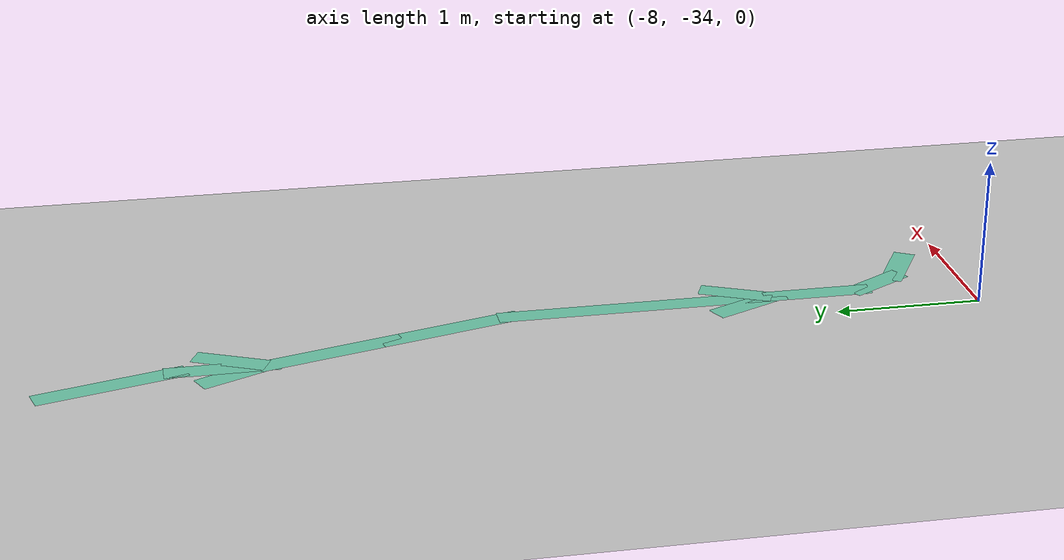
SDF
<sdf version="1.6">
 <world name="world">
  <model name="ground_plane">
   <static>1</static>
   <link name="link">
    <collision name="collision">
     <geometry><plane><normal>0 0 1</normal><size>100 100</size></plane></geometry>
     <surface><friction><ode><mu>100</mu><mu2>50</mu2></ode></friction></surface>
    </collision>
    <visual name="visual">
     <cast_shadows>0</cast_shadows>
     <geometry><plane><normal>0 0 1</normal><size>100 100</size></plane></geometry>
     <material>
      <script><uri>file://media/materials/scripts/gazebo.material</uri><name>Gazebo/Grey</name></script>
     </material>
    </visual>
   </link>
   <pose>0 0 -0.1 0 -0 0</pose>
  </model>
  <model name="path_hospital">
   <link name="Wall_33">
    <pose>-5.74819 -6.16107 0 0 -0 2.61799</pose>
    <visual name="Wall_33_Visual">
     <geometry><box><size>0.5 0.15 0</size></box></geometry>
     <material>
      <script><uri>file://media/materials/scripts/gazebo.material</uri><name>Gazebo/Grey</name></script>
      <ambient>0.435294 0.796078 0.67451 1</ambient>
      <shader type="pixel"/>
     </material>
     <meta><layer>0</layer></meta>
    </visual>
    <collision name="Wall_33_Collision">
     <geometry><box><size>0.5 0.15 0</size></box></geometry>
     <surface>
      <friction>
       <ode><mu>1</mu><mu2>1</mu2><fdir1>0 0 0</fdir1><slip1>0</slip1><slip2>0</slip2></ode>
       <torsional>
        <coefficient>1</coefficient>
        <patch_radius>0</patch_radius>
        <surface_radius>0</surface_radius>
        <use_patch_radius>1</use_patch_radius>
        <ode><slip>0</slip></ode>
       </torsional>
      </friction>
      <bounce><restitution_coefficient>0</restitution_coefficient><threshold>1e+06</threshold></bounce>
      <contact>
       <collide_without_contact>0</collide_without_contact>
       <collide_without_contact_bitmask>1</collide_without_contact_bitmask>
       <collide_bitmask>1</collide_bitmask>
       <ode>
        <soft_cfm>0</soft_cfm>
        <soft_erp>0.2</soft_erp>
        <kp>1e+13</kp>
        <kd>1</kd>
        <max_vel>0.01</max_vel>
        <min_depth>0</min_depth>
       </ode>
       <bullet>
        <split_impulse>1</split_impulse>
        <split_impulse_penetration_threshold>-0.01</split_impulse_penetration_threshold>
        <soft_cfm>0</soft_cfm>
        <soft_erp>0.2</soft_erp>
        <kp>1e+13</kp>
        <kd>1</kd>
       </bullet>
      </contact>
     </surface>
    </collision>
   </link>
   <link name="Wall_34">
    <pose>-5.98725 -5.92201 0 0 -0 2.0944</pose>
    <visual name="Wall_34_Visual">
     <geometry><box><size>0.5 0.15 0</size></box></geometry>
     <material>
      <script><uri>file://media/materials/scripts/gazebo.material</uri><name>Gazebo/Grey</name></script>
      <ambient>0.435294 0.796078 0.67451 1</ambient>
      <shader type="pixel"/>
     </material>
     <meta><layer>0</layer></meta>
    </visual>
    <collision name="Wall_34_Collision">
     <geometry><box><size>0.5 0.15 0</size></box></geometry>
     <surface>
      <friction>
       <ode><mu>1</mu><mu2>1</mu2><fdir1>0 0 0</fdir1><slip1>0</slip1><slip2>0</slip2></ode>
       <torsional>
        <coefficient>1</coefficient>
        <patch_radius>0</patch_radius>
        <surface_radius>0</surface_radius>
        <use_patch_radius>1</use_patch_radius>
        <ode><slip>0</slip></ode>
       </torsional>
      </friction>
      <bounce><restitution_coefficient>0</restitution_coefficient><threshold>1e+06</threshold></bounce>
      <contact>
       <collide_without_contact>0</collide_without_contact>
       <collide_without_contact_bitmask>1</collide_without_contact_bitmask>
       <collide_bitmask>1</collide_bitmask>
       <ode>
        <soft_cfm>0</soft_cfm>
        <soft_erp>0.2</soft_erp>
        <kp>1e+13</kp>
        <kd>1</kd>
        <max_vel>0.01</max_vel>
        <min_depth>0</min_depth>
       </ode>
       <bullet>
        <split_impulse>1</split_impulse>
        <split_impulse_penetration_threshold>-0.01</split_impulse_penetration_threshold>
        <soft_cfm>0</soft_cfm>
        <soft_erp>0.2</soft_erp>
        <kp>1e+13</kp>
        <kd>1</kd>
       </bullet>
      </contact>
     </surface>
    </collision>
   </link>
   <link name="Wall_35">
    <pose>-6.07475 -5.47046 0 0 -0 1.5708</pose>
    <visual name="Wall_35_Visual">
     <geometry><box><size>0.75 0.15 0</size></box></geometry>
     <material>
      <script><uri>file://media/materials/scripts/gazebo.material</uri><name>Gazebo/Grey</name></script>
      <ambient>0.435294 0.796078 0.67451 1</ambient>
      <shader type="pixel"/>
     </material>
     <meta><layer>0</layer></meta>
    </visual>
    <collision name="Wall_35_Collision">
     <geometry><box><size>0.75 0.15 0</size></box></geometry>
     <surface>
      <friction>
       <ode><mu>1</mu><mu2>1</mu2><fdir1>0 0 0</fdir1><slip1>0</slip1><slip2>0</slip2></ode>
       <torsional>
        <coefficient>1</coefficient>
        <patch_radius>0</patch_radius>
        <surface_radius>0</surface_radius>
        <use_patch_radius>1</use_patch_radius>
        <ode><slip>0</slip></ode>
       </torsional>
      </friction>
      <bounce><restitution_coefficient>0</restitution_coefficient><threshold>1e+06</threshold></bounce>
      <contact>
       <collide_without_contact>0</collide_without_contact>
       <collide_without_contact_bitmask>1</collide_without_contact_bitmask>
       <collide_bitmask>1</collide_bitmask>
       <ode>
        <soft_cfm>0</soft_cfm>
        <soft_erp>0.2</soft_erp>
        <kp>1e+13</kp>
        <kd>1</kd>
        <max_vel>0.01</max_vel>
        <min_depth>0</min_depth>
       </ode>
       <bullet>
        <split_impulse>1</split_impulse>
        <split_impulse_penetration_threshold>-0.01</split_impulse_penetration_threshold>
        <soft_cfm>0</soft_cfm>
        <soft_erp>0.2</soft_erp>
        <kp>1e+13</kp>
        <kd>1</kd>
       </bullet>
      </contact>
     </surface>
    </collision>
   </link>
   <link name="Wall_36">
    <pose>-6.07475 -4.24546 0 0 -0 1.5708</pose>
    <visual name="Wall_36_Visual">
     <geometry><box><size>2 0.15 0</size></box></geometry>
     <material>
      <script><uri>file://media/materials/scripts/gazebo.material</uri><name>Gazebo/Grey</name></script>
      <ambient>0.435294 0.796078 0.67451 1</ambient>
      <shader type="pixel"/>
     </material>
     <meta><layer>0</layer></meta>
    </visual>
    <collision name="Wall_36_Collision">
     <geometry><box><size>2 0.15 0</size></box></geometry>
     <surface>
      <friction>
       <ode><mu>1</mu><mu2>1</mu2><fdir1>0 0 0</fdir1><slip1>0</slip1><slip2>0</slip2></ode>
       <torsional>
        <coefficient>1</coefficient>
        <patch_radius>0</patch_radius>
        <surface_radius>0</surface_radius>
        <use_patch_radius>1</use_patch_radius>
        <ode><slip>0</slip></ode>
       </torsional>
      </friction>
      <bounce><restitution_coefficient>0</restitution_coefficient><threshold>1e+06</threshold></bounce>
      <contact>
       <collide_without_contact>0</collide_without_contact>
       <collide_without_contact_bitmask>1</collide_without_contact_bitmask>
       <collide_bitmask>1</collide_bitmask>
       <ode>
        <soft_cfm>0</soft_cfm>
        <soft_erp>0.2</soft_erp>
        <kp>1e+13</kp>
        <kd>1</kd>
        <max_vel>0.01</max_vel>
        <min_depth>0</min_depth>
       </ode>
       <bullet>
        <split_impulse>1</split_impulse>
        <split_impulse_penetration_threshold>-0.01</split_impulse_penetration_threshold>
        <soft_cfm>0</soft_cfm>
        <soft_erp>0.2</soft_erp>
        <kp>1e+13</kp>
        <kd>1</kd>
       </bullet>
      </contact>
     </surface>
    </collision>
   </link>
   <link name="Wall_37">
    <pose>-6.18475 -2.90994 0 0 -0 1.8326</pose>
    <visual name="Wall_37_Visual">
     <geometry><box><size>1 0.15 0</size></box></geometry>
     <material>
      <script><uri>file://media/materials/scripts/gazebo.material</uri><name>Gazebo/Grey</name></script>
      <ambient>0.435294 0.796078 0.67451 1</ambient>
      <shader type="pixel"/>
     </material>
     <meta><layer>0</layer></meta>
    </visual>
    <collision name="Wall_37_Collision">
     <geometry><box><size>1 0.15 0</size></box></geometry>
     <surface>
      <friction>
       <ode><mu>1</mu><mu2>1</mu2><fdir1>0 0 0</fdir1><slip1>0</slip1><slip2>0</slip2></ode>
       <torsional>
        <coefficient>1</coefficient>
        <patch_radius>0</patch_radius>
        <surface_radius>0</surface_radius>
        <use_patch_radius>1</use_patch_radius>
        <ode><slip>0</slip></ode>
       </torsional>
      </friction>
      <bounce><restitution_coefficient>0</restitution_coefficient><threshold>1e+06</threshold></bounce>
      <contact>
       <collide_without_contact>0</collide_without_contact>
       <collide_without_contact_bitmask>1</collide_without_contact_bitmask>
       <collide_bitmask>1</collide_bitmask>
       <ode>
        <soft_cfm>0</soft_cfm>
        <soft_erp>0.2</soft_erp>
        <kp>1e+13</kp>
        <kd>1</kd>
        <max_vel>0.01</max_vel>
        <min_depth>0</min_depth>
       </ode>
       <bullet>
        <split_impulse>1</split_impulse>
        <split_impulse_penetration_threshold>-0.01</split_impulse_penetration_threshold>
        <soft_cfm>0</soft_cfm>
        <soft_erp>0.2</soft_erp>
        <kp>1e+13</kp>
        <kd>1</kd>
       </bullet>
      </contact>
     </surface>
    </collision>
   </link>
   <link name="Wall_38">
    <pose>-6.40474 -2.08891 0 0 -0 1.8326</pose>
    <visual name="Wall_38_Visual">
     <geometry><box><size>1 0.15 0</size></box></geometry>
     <material>
      <script><uri>file://media/materials/scripts/gazebo.material</uri><name>Gazebo/Grey</name></script>
      <ambient>0.435294 0.796078 0.67451 1</ambient>
      <shader type="pixel"/>
     </material>
     <meta><layer>0</layer></meta>
    </visual>
    <collision name="Wall_38_Collision">
     <geometry><box><size>1 0.15 0</size></box></geometry>
     <surface>
      <friction>
       <ode><mu>1</mu><mu2>1</mu2><fdir1>0 0 0</fdir1><slip1>0</slip1><slip2>0</slip2></ode>
       <torsional>
        <coefficient>1</coefficient>
        <patch_radius>0</patch_radius>
        <surface_radius>0</surface_radius>
        <use_patch_radius>1</use_patch_radius>
        <ode><slip>0</slip></ode>
       </torsional>
      </friction>
      <bounce><restitution_coefficient>0</restitution_coefficient><threshold>1e+06</threshold></bounce>
      <contact>
       <collide_without_contact>0</collide_without_contact>
       <collide_without_contact_bitmask>1</collide_without_contact_bitmask>
       <collide_bitmask>1</collide_bitmask>
       <ode>
        <soft_cfm>0</soft_cfm>
        <soft_erp>0.2</soft_erp>
        <kp>1e+13</kp>
        <kd>1</kd>
        <max_vel>0.01</max_vel>
        <min_depth>0</min_depth>
       </ode>
       <bullet>
        <split_impulse>1</split_impulse>
        <split_impulse_penetration_threshold>-0.01</split_impulse_penetration_threshold>
        <soft_cfm>0</soft_cfm>
        <soft_erp>0.2</soft_erp>
        <kp>1e+13</kp>
        <kd>1</kd>
       </bullet>
      </contact>
     </surface>
    </collision>
   </link>
   <link name="Wall_39">
    <pose>-6.51474 -1.37839 0 0 -0 1.5708</pose>
    <visual name="Wall_39_Visual">
     <geometry><box><size>0.75 0.15 0</size></box></geometry>
     <material>
      <script><uri>file://media/materials/scripts/gazebo.material</uri><name>Gazebo/Grey</name></script>
      <ambient>0.435294 0.796078 0.67451 1</ambient>
      <shader type="pixel"/>
     </material>
     <meta><layer>0</layer></meta>
    </visual>
    <collision name="Wall_39_Collision">
     <geometry><box><size>0.75 0.15 0</size></box></geometry>
     <surface>
      <friction>
       <ode><mu>1</mu><mu2>1</mu2><fdir1>0 0 0</fdir1><slip1>0</slip1><slip2>0</slip2></ode>
       <torsional>
        <coefficient>1</coefficient>
        <patch_radius>0</patch_radius>
        <surface_radius>0</surface_radius>
        <use_patch_radius>1</use_patch_radius>
        <ode><slip>0</slip></ode>
       </torsional>
      </friction>
      <bounce><restitution_coefficient>0</restitution_coefficient><threshold>1e+06</threshold></bounce>
      <contact>
       <collide_without_contact>0</collide_without_contact>
       <collide_without_contact_bitmask>1</collide_without_contact_bitmask>
       <collide_bitmask>1</collide_bitmask>
       <ode>
        <soft_cfm>0</soft_cfm>
        <soft_erp>0.2</soft_erp>
        <kp>1e+13</kp>
        <kd>1</kd>
        <max_vel>0.01</max_vel>
        <min_depth>0</min_depth>
       </ode>
       <bullet>
        <split_impulse>1</split_impulse>
        <split_impulse_penetration_threshold>-0.01</split_impulse_penetration_threshold>
        <soft_cfm>0</soft_cfm>
        <soft_erp>0.2</soft_erp>
        <kp>1e+13</kp>
        <kd>1</kd>
       </bullet>
      </contact>
     </surface>
    </collision>
   </link>
   <link name="Wall_40">
    <pose>-6.62474 -0.66787 0 0 -0 1.8326</pose>
    <visual name="Wall_40_Visual">
     <geometry><box><size>1 0.15 0</size></box></geometry>
     <material>
      <script><uri>file://media/materials/scripts/gazebo.material</uri><name>Gazebo/Grey</name></script>
      <ambient>0.435294 0.796078 0.67451 1</ambient>
      <shader type="pixel"/>
     </material>
     <meta><layer>0</layer></meta>
    </visual>
    <collision name="Wall_40_Collision">
     <geometry><box><size>1 0.15 0</size></box></geometry>
     <surface>
      <friction>
       <ode><mu>1</mu><mu2>1</mu2><fdir1>0 0 0</fdir1><slip1>0</slip1><slip2>0</slip2></ode>
       <torsional>
        <coefficient>1</coefficient>
        <patch_radius>0</patch_radius>
        <surface_radius>0</surface_radius>
        <use_patch_radius>1</use_patch_radius>
        <ode><slip>0</slip></ode>
       </torsional>
      </friction>
      <bounce><restitution_coefficient>0</restitution_coefficient><threshold>1e+06</threshold></bounce>
      <contact>
       <collide_without_contact>0</collide_without_contact>
       <collide_without_contact_bitmask>1</collide_without_contact_bitmask>
       <collide_bitmask>1</collide_bitmask>
       <ode>
        <soft_cfm>0</soft_cfm>
        <soft_erp>0.2</soft_erp>
        <kp>1e+13</kp>
        <kd>1</kd>
        <max_vel>0.01</max_vel>
        <min_depth>0</min_depth>
       </ode>
       <bullet>
        <split_impulse>1</split_impulse>
        <split_impulse_penetration_threshold>-0.01</split_impulse_penetration_threshold>
        <soft_cfm>0</soft_cfm>
        <soft_erp>0.2</soft_erp>
        <kp>1e+13</kp>
        <kd>1</kd>
       </bullet>
      </contact>
     </surface>
    </collision>
   </link>
   <link name="Wall_60_clone_clone_clone_1_clone">
    <pose>-6.61352 -1.44581 0 0 -0 2</pose>
    <inertial>
     <mass>1</mass>
     <inertia><ixx>1</ixx><ixy>0</ixy><ixz>0</ixz><iyy>1</iyy><iyz>0</iyz><izz>1</izz></inertia>
    </inertial>
    <visual name="Wall_60_Visual">
     <geometry><box><size>0.5 0.15 0</size></box></geometry>
     <material>
      <script><uri>file://media/materials/scripts/gazebo.material</uri><name>Gazebo/Grey</name></script>
      <ambient>0.435 0.796 0.675 1</ambient>
      <shader type="pixel"><normal_map>__default__</normal_map></shader>
      <diffuse>0.7 0.7 0.7 1</diffuse>
      <specular>0.01 0.01 0.01 1</specular>
      <emissive>0 0 0 1</emissive>
     </material>
     <meta><layer>0</layer></meta>
    </visual>
    <collision name="Wall_60_Collision">
     <geometry><box><size>0.5 0.15 0</size></box></geometry>
     <surface>
      <friction>
       <ode><mu>1</mu><mu2>1</mu2><fdir1>0 0 0</fdir1><slip1>0</slip1><slip2>0</slip2></ode>
       <torsional>
        <coefficient>1</coefficient>
        <patch_radius>0</patch_radius>
        <surface_radius>0</surface_radius>
        <use_patch_radius>1</use_patch_radius>
        <ode><slip>0</slip></ode>
       </torsional>
      </friction>
      <bounce><restitution_coefficient>0</restitution_coefficient><threshold>1e+06</threshold></bounce>
      <contact>
       <collide_without_contact>0</collide_without_contact>
       <collide_without_contact_bitmask>1</collide_without_contact_bitmask>
       <collide_bitmask>1</collide_bitmask>
       <ode>
        <soft_cfm>0</soft_cfm>
        <soft_erp>0.2</soft_erp>
        <kp>1e+13</kp>
        <kd>1</kd>
        <max_vel>0.01</max_vel>
        <min_depth>0</min_depth>
       </ode>
       <bullet>
        <split_impulse>1</split_impulse>
        <split_impulse_penetration_threshold>-0.01</split_impulse_penetration_threshold>
        <soft_cfm>0</soft_cfm>
        <soft_erp>0.2</soft_erp>
        <kp>1e+13</kp>
        <kd>1</kd>
       </bullet>
      </contact>
     </surface>
    </collision>
   </link>
   <link name="Wall_60_clone_clone_clone_1_clone_clone">
    <pose>-6.18311 -4.92493 0 0 -0 2</pose>
    <inertial>
     <mass>1</mass>
     <inertia><ixx>1</ixx><ixy>0</ixy><ixz>0</ixz><iyy>1</iyy><iyz>0</iyz><izz>1</izz></inertia>
    </inertial>
    <visual name="Wall_60_Visual">
     <geometry><box><size>0.5 0.15 0</size></box></geometry>
     <material>
      <script><uri>file://media/materials/scripts/gazebo.material</uri><name>Gazebo/Grey</name></script>
      <ambient>0.435 0.796 0.675 1</ambient>
      <shader type="pixel"><normal_map>__default__</normal_map></shader>
      <diffuse>0.7 0.7 0.7 1</diffuse>
      <specular>0.01 0.01 0.01 1</specular>
      <emissive>0 0 0 1</emissive>
     </material>
     <meta><layer>0</layer></meta>
    </visual>
    <collision name="Wall_60_Collision">
     <geometry><box><size>0.5 0.15 0</size></box></geometry>
     <surface>
      <friction>
       <ode><mu>1</mu><mu2>1</mu2><fdir1>0 0 0</fdir1><slip1>0</slip1><slip2>0</slip2></ode>
       <torsional>
        <coefficient>1</coefficient>
        <patch_radius>0</patch_radius>
        <surface_radius>0</surface_radius>
        <use_patch_radius>1</use_patch_radius>
        <ode><slip>0</slip></ode>
       </torsional>
      </friction>
      <bounce><restitution_coefficient>0</restitution_coefficient><threshold>1e+06</threshold></bounce>
      <contact>
       <collide_without_contact>0</collide_without_contact>
       <collide_without_contact_bitmask>1</collide_without_contact_bitmask>
       <collide_bitmask>1</collide_bitmask>
       <ode>
        <soft_cfm>0</soft_cfm>
        <soft_erp>0.2</soft_erp>
        <kp>1e+13</kp>
        <kd>1</kd>
        <max_vel>0.01</max_vel>
        <min_depth>0</min_depth>
       </ode>
       <bullet>
        <split_impulse>1</split_impulse>
        <split_impulse_penetration_threshold>-0.01</split_impulse_penetration_threshold>
        <soft_cfm>0</soft_cfm>
        <soft_erp>0.2</soft_erp>
        <kp>1e+13</kp>
        <kd>1</kd>
       </bullet>
      </contact>
     </surface>
    </collision>
   </link>
   <link name="Wall_60_clone_clone_clone_2_clone">
    <pose>-6.40968 -1.43762 0 0 0 -2</pose>
    <inertial>
     <mass>1</mass>
     <inertia><ixx>1</ixx><ixy>0</ixy><ixz>0</ixz><iyy>1</iyy><iyz>0</iyz><izz>1</izz></inertia>
    </inertial>
    <visual name="Wall_60_Visual">
     <geometry><box><size>0.5 0.15 0</size></box></geometry>
     <material>
      <script><uri>file://media/materials/scripts/gazebo.material</uri><name>Gazebo/Grey</name></script>
      <ambient>0.435 0.796 0.675 1</ambient>
      <shader type="pixel"><normal_map>__default__</normal_map></shader>
      <diffuse>0.7 0.7 0.7 1</diffuse>
      <specular>0.01 0.01 0.01 1</specular>
      <emissive>0 0 0 1</emissive>
     </material>
     <meta><layer>0</layer></meta>
    </visual>
    <collision name="Wall_60_Collision">
     <geometry><box><size>0.5 0.15 0</size></box></geometry>
     <surface>
      <friction>
       <ode><mu>1</mu><mu2>1</mu2><fdir1>0 0 0</fdir1><slip1>0</slip1><slip2>0</slip2></ode>
       <torsional>
        <coefficient>1</coefficient>
        <patch_radius>0</patch_radius>
        <surface_radius>0</surface_radius>
        <use_patch_radius>1</use_patch_radius>
        <ode><slip>0</slip></ode>
       </torsional>
      </friction>
      <bounce><restitution_coefficient>0</restitution_coefficient><threshold>1e+06</threshold></bounce>
      <contact>
       <collide_without_contact>0</collide_without_contact>
       <collide_without_contact_bitmask>1</collide_without_contact_bitmask>
       <collide_bitmask>1</collide_bitmask>
       <ode>
        <soft_cfm>0</soft_cfm>
        <soft_erp>0.2</soft_erp>
        <kp>1e+13</kp>
        <kd>1</kd>
        <max_vel>0.01</max_vel>
        <min_depth>0</min_depth>
       </ode>
       <bullet>
        <split_impulse>1</split_impulse>
        <split_impulse_penetration_threshold>-0.01</split_impulse_penetration_threshold>
        <soft_cfm>0</soft_cfm>
        <soft_erp>0.2</soft_erp>
        <kp>1e+13</kp>
        <kd>1</kd>
       </bullet>
      </contact>
     </surface>
    </collision>
   </link>
   <link name="Wall_60_clone_clone_clone_2_clone_clone">
    <pose>-5.97857 -4.91792 0 0 0 -2</pose>
    <inertial>
     <mass>1</mass>
     <inertia><ixx>1</ixx><ixy>0</ixy><ixz>0</ixz><iyy>1</iyy><iyz>0</iyz><izz>1</izz></inertia>
    </inertial>
    <visual name="Wall_60_Visual">
     <geometry><box><size>0.5 0.15 0</size></box></geometry>
     <material>
      <script><uri>file://media/materials/scripts/gazebo.material</uri><name>Gazebo/Grey</name></script>
      <ambient>0.435 0.796 0.675 1</ambient>
      <shader type="pixel"><normal_map>__default__</normal_map></shader>
      <diffuse>0.7 0.7 0.7 1</diffuse>
      <specular>0.01 0.01 0.01 1</specular>
      <emissive>0 0 0 1</emissive>
     </material>
     <meta><layer>0</layer></meta>
    </visual>
    <collision name="Wall_60_Collision">
     <geometry><box><size>0.5 0.15 0</size></box></geometry>
     <surface>
      <friction>
       <ode><mu>1</mu><mu2>1</mu2><fdir1>0 0 0</fdir1><slip1>0</slip1><slip2>0</slip2></ode>
       <torsional>
        <coefficient>1</coefficient>
        <patch_radius>0</patch_radius>
        <surface_radius>0</surface_radius>
        <use_patch_radius>1</use_patch_radius>
        <ode><slip>0</slip></ode>
       </torsional>
      </friction>
      <bounce><restitution_coefficient>0</restitution_coefficient><threshold>1e+06</threshold></bounce>
      <contact>
       <collide_without_contact>0</collide_without_contact>
       <collide_without_contact_bitmask>1</collide_without_contact_bitmask>
       <collide_bitmask>1</collide_bitmask>
       <ode>
        <soft_cfm>0</soft_cfm>
        <soft_erp>0.2</soft_erp>
        <kp>1e+13</kp>
        <kd>1</kd>
        <max_vel>0.01</max_vel>
        <min_depth>0</min_depth>
       </ode>
       <bullet>
        <split_impulse>1</split_impulse>
        <split_impulse_penetration_threshold>-0.01</split_impulse_penetration_threshold>
        <soft_cfm>0</soft_cfm>
        <soft_erp>0.2</soft_erp>
        <kp>1e+13</kp>
        <kd>1</kd>
       </bullet>
      </contact>
     </surface>
    </collision>
   </link>
   <static>1</static>
   <pose>-1.59521 -27.4877 0.001 0 -0 0</pose>
  </model>
 </world>
</sdf>
